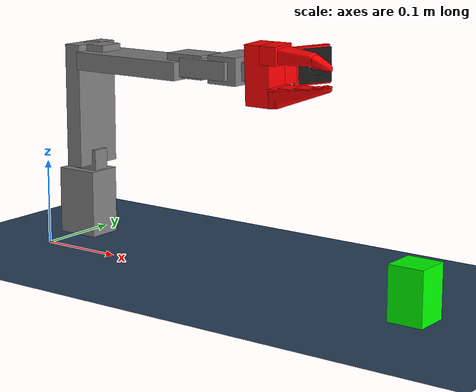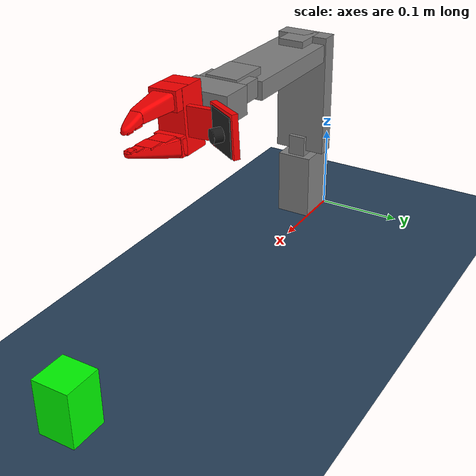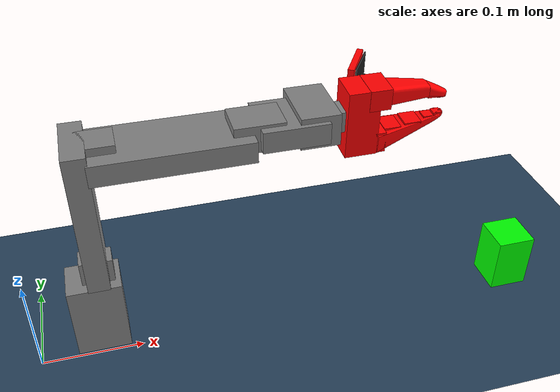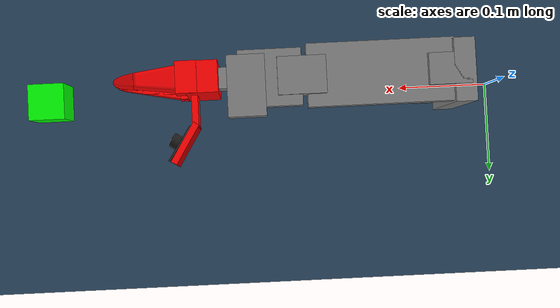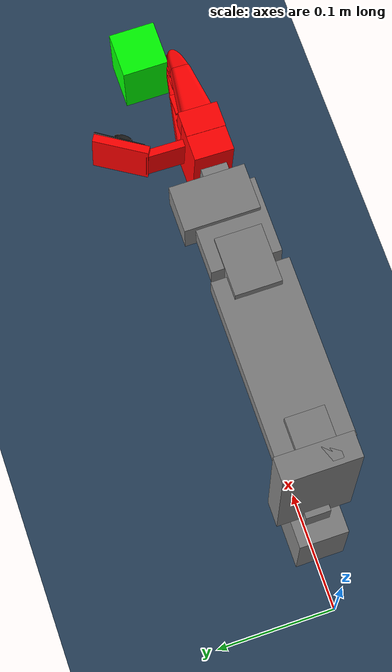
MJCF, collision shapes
<mujoco model="scene">
  <include file="so101.xml"/>

  <visual>
    <headlight diffuse="0.6 0.6 0.6" ambient="0.3 0.3 0.3" specular="0 0 0"/>
    <rgba haze="0.15 0.25 0.35 1"/>
    <global azimuth="160" elevation="-20"/>
  </visual>

  <asset>
    <texture type="skybox" builtin="gradient" rgb1="0.3 0.5 0.7" rgb2="0 0 0" width="512" height="3072"/>
    <texture type="2d" name="groundplane" builtin="checker" mark="edge" rgb1="0.2 0.3 0.4" rgb2="0.1 0.2 0.3"
      markrgb="0.8 0.8 0.8" width="300" height="300"/>
    <material name="groundplane" texture="groundplane" texuniform="true" texrepeat="5 5" reflectance="0.2"/>
  </asset>

  <worldbody>
    <light pos="0 0 3.5" dir="0 0 -1" directional="true"/>
    <geom name="floor" size="0 0 0.05" pos="0 0 0" type="plane" material="groundplane"/>
    <body name="box" pos="0.5 0 0.03">
      <freejoint/>
      <geom type="box" name="box" size="0.02 0.02 0.03" condim="3" friction="1 .03 .003" rgba="0 1 0 1" contype="2"
        conaffinity="1" solref="0.01 1"/>
    </body>
  </worldbody>

  <keyframe>
    <key name="pickup" time="59.522"
      qpos="9.27168e-09 0.000381818 0.473496 1.17717 1.58437 0.727663 0.219168 0.0242023 0.0199388 0.0643606 -0.704172 0.0643607 0.704172"
      qvel="-5.74489e-08 1.81938e-08 6.93455e-09 -7.64472e-09 1.57787e-09 8.00072e-14 2.50825e-08 1.39116e-07 9.22415e-09 1.91651e-08 -3.94011e-09 -1.49479e-06"
      ctrl="0 0 0.4732 1.17718 1.58438 0.727665"/>
  </keyframe>
</mujoco>

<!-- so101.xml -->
<mujoco model="so101">
  <option integrator="implicitfast" timestep="0.005" cone="elliptic" iterations="10" ls_iterations="20" impratio="10"/>

  <compiler angle="radian" meshdir="assets" autolimits="true"/>

  <visual>
    <scale contactwidth="0.1" contactheight="0.05" forcewidth="0.02" framelength="0.75" framewidth="0.025"
      camera="0.2"/>
  </visual>

  <default>
    <mesh maxhullvert="128"/>

    <default class="so101">
      <joint damping="1" frictionloss="0.1" armature="0.005"/>
      <position kp="50"/>
      <default class="visual">
        <geom type="mesh" contype="0" conaffinity="0" group="2"/>
      </default>
      <default class="collision">
        <geom group="3" condim="3"/>
      </default>
      <default class="collision_gripper">
        <geom group="3" condim="6" friction="1 5e-3 5e-4" solref="0.01 1" priority="1" rgba="1.0 0 0 1.0" mass="0"/>
      </default>
      <default class="collision_gripper_mesh">
        <geom group="4" condim="6" friction="1 5e-3 5e-4" solref="0.01 1" priority="1" rgba="1.0 0 0 1.0" mass="0"/>
      </default>
    </default>

    <default class="sts3215">
      <geom contype="0" conaffinity="0"/>
      <joint damping="0.60" frictionloss="0.052" armature="0.028"/>
      <position kp="998.22" kv="2.731" forcerange="-2.94 2.94"/>
    </default>

    <default class="backlash">
      <!-- +/- 0.5° of backlash – not added to any joints for now -->
      <joint damping="0.01" frictionloss="0" armature="0.01" limited="true" range="-0.0087267 0.0087267"/>
    </default>
  </default>

  <asset>
    <mesh file="waveshare_mounting_plate_so101_v2.stl"/>
    <mesh file="sts3215_03a_v1.stl"/>
    <mesh file="motor_holder_so101_base_v1.stl"/>
    <mesh file="wrist_roll_follower_so101_v1.stl"/>
    <mesh file="moving_jaw_so101_v1.stl"/>
    <mesh file="base_motor_holder_so101_v1.stl"/>
    <mesh file="upper_arm_so101_v1.stl"/>
    <mesh file="wrist_roll_pitch_so101_v2.stl"/>
    <mesh file="under_arm_so101_v1.stl"/>
    <mesh file="rotation_pitch_so101_v1.stl"/>
    <mesh file="motor_holder_so101_wrist_v1.stl"/>
    <mesh file="sts3215_03a_no_horn_v1.stl"/>
    <mesh file="base_so101_v2.stl"/>
    <mesh file="moving_jaw_so101_gripper_v1.stl"/>
    <mesh file="wrist_roll_follower_so101_camera_mount.stl"/>
    <!-- Gripper collision meshes. -->
    <mesh maxhullvert="64" file="wrist_roll_follower_so101_gripper_part0_v1.stl"/>
    <mesh maxhullvert="64" file="moving_jaw_so101_gripper_part0_v1.stl"/>
    <mesh maxhullvert="64" file="moving_jaw_so101_gripper_part1_v1.stl"/>
    <material name="base_motor_holder_so101_v1_material" rgba="1 0.82 0.12 1"/>
    <material name="base_so101_v2_material" rgba="1 0.82 0.12 1"/>
    <material name="sts3215_03a_v1_material" rgba="0.1 0.1 0.1 1"/>
    <material name="waveshare_mounting_plate_so101_v2_material" rgba="1 0.82 0.12 1"/>
    <material name="motor_holder_so101_base_v1_material" rgba="1 0.82 0.12 1"/>
    <material name="rotation_pitch_so101_v1_material" rgba="1 0.82 0.12 1"/>
    <material name="upper_arm_so101_v1_material" rgba="1 0.82 0.12 1"/>
    <material name="under_arm_so101_v1_material" rgba="1 0.82 0.12 1"/>
    <material name="motor_holder_so101_wrist_v1_material" rgba="1 0.82 0.12 1"/>
    <material name="sts3215_03a_no_horn_v1_material" rgba="0.1 0.1 0.1 1.0"/>
    <material name="wrist_roll_pitch_so101_v2_material" rgba="1 0.82 0.12 1"/>
    <material name="wrist_roll_follower_so101_v1_material" rgba="1 0.82 0.12 1"/>
    <material name="moving_jaw_so101_v1_material" rgba="1 0.82 0.12 1"/>
  </asset>

  <worldbody>
    <!-- Link base -->
    <body name="base" pos="0 0 0" quat="1 0 0 0" childclass="so101">
      <inertial pos="0.0137179 -5.19711e-05 0.0334843" mass="0.147"
        fullinertia="0.000114686 0.000136117 0.000130364 -4.59787e-07 4.97151e-06 9.75275e-08"/>
      <!-- Part base_motor_holder_so101_v1 -->
      <geom type="mesh" class="visual" pos="-0.006365 -9.9e-05 -0.0024" quat="1 1 1 1" mesh="base_motor_holder_so101_v1"
        material="base_motor_holder_so101_v1_material"/>
      <!-- Part base_so101_v2 -->
      <geom type="mesh" class="visual" pos="-0.006365 0 -0.0024" quat="1 1 1 1" mesh="base_so101_v2"
        material="base_so101_v2_material"/>
      <!-- Part sts3215_03a_v1 -->
      <geom type="mesh" class="visual" pos="0.0263353 0 0.0437" quat="1 0 0 0" mesh="sts3215_03a_v1"
        material="sts3215_03a_v1_material"/>
      <!-- Part waveshare_mounting_plate_so101_v2 -->
      <geom type="mesh" class="visual" pos="-0.0309827 -0.000199 0.0474" quat="1 1 1 1"
        mesh="waveshare_mounting_plate_so101_v2" material="waveshare_mounting_plate_so101_v2_material"/>
      <!-- Frame baseframe -->
      <site group="3" name="baseframe" pos="0 0 0" quat="1 0 0 0"/>
      <!-- Link shoulder -->
      <body name="shoulder" pos="0.0388353 0 0.0624" quat="0 0 -1 0">
        <!-- Joint from base to shoulder -->
        <joint axis="0 0 1" name="shoulder_pan" type="hinge" range="-1.91986 1.91986" class="sts3215"/>
        <inertial pos="-0.0307604 -1.7e-05 -0.0252713" mass="0.100006"
          fullinertia="8.3759e-05 8.10403e-05 2.39783e-05 7.55525e-08 -1.16342e-06 1.54663e-07"/>
        <!-- Part sts3215_03a_v1_2 -->
        <geom type="mesh" class="visual" pos="-0.030399 0.000422 -0.0417" quat="1 1 1 -1" mesh="sts3215_03a_v1"
          material="sts3215_03a_v1_material"/>
        <geom type="box" class="collision" pos="-0.030399 0.000422 -0.0387" quat="1 1 1 -1" size="0.023 0.015 0.01"/>
        <!-- Part motor_holder_so101_base_v1 -->
        <geom type="mesh" class="visual" pos="-0.067599 -0.0001778 0.01585" quat="1 1 -1 1"
          mesh="motor_holder_so101_base_v1" material="motor_holder_so101_base_v1_material"/>
        <geom type="box" class="collision" pos="-0.025 0 0.0" quat="1 1 -1 1" size="0.038 0.025 0.02"/>
        <!-- Part rotation_pitch_so101_v1 -->
        <geom type="mesh" class="visual" pos="0.012201 2.2e-05 0.0464" quat="1 -1 0 0" mesh="rotation_pitch_so101_v1"
          material="rotation_pitch_so101_v1_material"/>
        <!-- Link upper_arm -->
        <body name="upper_arm" pos="-0.0303992 -0.0182778 -0.0542" quat="1 -1 -1 -1">
          <!-- Joint from shoulder to upper_arm -->
          <joint axis="0 0 1" name="shoulder_lift" type="hinge" range="-1.7453293 1.7453293" class="sts3215"/>
          <inertial pos="-0.089847 -0.008382 0.018409" mass="0.103"
            fullinertia="4.08002e-05 0.000147318 0.000142487 -1.97819e-05 -4.03016e-08 8.97326e-09"/>
          <!-- Part sts3215_03a_v1_3 -->
          <geom type="mesh" class="visual" pos="-0.11257 -0.0155 0.0187" quat="0 -1 1 0" mesh="sts3215_03a_v1"
            material="sts3215_03a_v1_material"/>
          <geom type="box" class="collision" pos="-0.06 0 0.02" quat="0 -1 1 0" size="0.01 0.07 0.03"/>
          <!-- Part upper_arm_so101_v1 -->
          <geom type="mesh" class="visual" pos="-0.065085 0.012 0.0182" quat="0 1 0 0" mesh="upper_arm_so101_v1"
            material="upper_arm_so101_v1_material"/>
          <geom type="box" class="collision" pos="-0.12 -0.014 0.0182" quat="0 1 0 0" size="0.01 0.02 0.015"/>
          <!-- Link lower_arm -->
          <body name="lower_arm" pos="-0.11257 -0.028 0" quat="1 0 0 1">
            <!-- Joint from upper_arm to lower_arm -->
            <!-- Note: 5-degree calibration offset applied to joint range -->
            <joint axis="0 0 1" name="elbow_flex" type="hinge" range="-1.69 1.69" class="sts3215"/>
            <inertial pos="-0.098070 0.0032438 0.018283" mass="0.104"
              fullinertia="2.87438e-05 0.000159844 0.00014529 7.41152e-06 1.26409e-06 -4.90188e-08"/>
            <!-- Part under_arm_so101_v1 -->
            <geom type="mesh" class="visual" pos="-0.06485 -0.032 0.0182" quat="0 1 0 0" mesh="under_arm_so101_v1"
              material="under_arm_so101_v1_material"/>
            <geom type="box" class="collision" pos="-0.05 0 0.0182" quat="0 1 0 0" size="0.07 0.01 0.03"/>
            <!-- Part motor_holder_so101_wrist_v1 -->
            <geom type="mesh" class="visual" pos="-0.06485 -0.032 0.018" quat="0 -1 0 0"
              mesh="motor_holder_so101_wrist_v1" material="motor_holder_so101_wrist_v1_material"/>
            <geom type="box" class="collision" pos="-0.125 0.005 0.018" quat="0 -1 0 0" size="0.023 0.013 0.018"/>
            <!-- Part sts3215_03a_v1_4 -->
            <geom type="mesh" class="visual" pos="-0.1224 0.0052 0.0187" quat="0 0 1 0" mesh="sts3215_03a_v1"
              material="sts3215_03a_v1_material"/>
            <!-- Link wrist -->
            <body name="wrist" pos="-0.1349 0.0052 0" quat="1 0 0 -1">
              <!-- Joint from lower_arm to wrist -->
              <joint axis="0 0 1" name="wrist_flex" type="hinge" range="-1.658063 1.658063" class="sts3215"/>
              <inertial pos="-0.000103312 -0.0386143 0.0281156" mass="0.079"
                fullinertia="3.68263e-05 2.5391e-05 2.1e-05 1.7893e-08 -5.28128e-08 3.6412e-06"/>
              <!-- Part sts3215_03a_no_horn_v1 -->
              <geom type="mesh" class="visual" pos="0 -0.0424 0.0306" quat="1 1 1 -1" mesh="sts3215_03a_no_horn_v1"
                material="sts3215_03a_no_horn_v1_material"/>
              <geom type="box" class="collision" pos="0 -0.0424 0.0256" quat="1 1 1 -1" size="0.029 0.015 0.018"/>
              <!-- Part wrist_roll_pitch_so101_v2 -->
              <geom type="mesh" class="visual" pos="0 -0.028 0.0181" quat="1 -1 -1 -1" mesh="wrist_roll_pitch_so101_v2"
                material="wrist_roll_pitch_so101_v2_material"/>
              <geom type="box" class="collision" pos="0 -0.02 0.0191" quat="1 -1 -1 -1" size="0.027 0.01 0.03"/>
              <!-- Link gripper -->
              <body name="gripper" pos="5.55112e-17 -0.0611 0.0181" quat="0.0172091 -0.0172091 0.706897 0.706897">
                <!-- Joint from wrist to gripper -->
                <joint axis="0 0 1" name="wrist_roll" type="hinge" range="-2.7438473 2.8412063" class="sts3215"/>
                <inertial pos="0.000214 0.000245 -0.025187" mass="0.087"
                  fullinertia="2.75087e-05 4.33657e-05 3.45059e-05 -3.35241e-07 -5.7352e-06 -5.17847e-08"/>
                <!-- Part sts3215_03a_v1_5 -->
                <geom type="mesh" class="visual" pos="0.0077 0.0001 -0.0234" quat="1 -1 0 0" mesh="sts3215_03a_v1"
                  material="sts3215_03a_v1_material"/>
                <!-- Part wrist_roll_follower_so101_v1 (fixed jaw) -->
                <geom type="mesh" class="visual" pos="0 -0.000218 0.00095" quat="0 1 0 0"
                  mesh="wrist_roll_follower_so101_v1" material="wrist_roll_follower_so101_v1_material"/>
                <geom type="box" class="collision" pos="0 -0.000218 0.00095" quat="0 1 0 0" size="0.01 0.01 0.018"/>
                <!-- Part wrist_roll_follower_so101_v1 gripper collision  -->
                <geom name="fixed_jaw_box1" class="collision_gripper" type="box" size="0.0325 0.015 0.015"
                  pos="-0.0025 0 -0.022"/>
                <geom name="fixed_jaw_box2" class="collision_gripper" type="box" size="0.01 0.015 0.005"
                  pos="-0.024 0 -0.04"/>
                <geom name="fixed_jaw_sph_tip1" class="collision_gripper" type="sphere" size="0.00075"
                  pos="-0.0081 0 -0.101"/>
                <geom name="fixed_jaw_sph_tip2" class="collision_gripper" type="sphere" size="0.00075"
                  pos="-0.0081 0.0035 -0.0975"/>
                <geom name="fixed_jaw_sph_tip3" class="collision_gripper" type="sphere" size="0.00075"
                  pos="-0.0081 -0.0035 -0.0975"/>
                <geom type="mesh" class="collision_gripper_mesh" pos="0 -0.000218 0.00095" quat="0 1 0 0"
                  mesh="wrist_roll_follower_so101_gripper_part0_v1"/>
                <geom name="fixed_jaw_box3" class="collision_gripper" type="capsule" size="0.0011 0.002"
                  pos="-0.009 0 -0.103" euler="1.57 0 0"/>
                <geom name="fixed_jaw_box4" class="collision_gripper" type="box" size="0.001 0.004 0.004"
                  pos="-0.009 0 -0.0982"/>
                <geom name="fixed_jaw_box5" class="collision_gripper" type="box" size="0.001 0.005 0.006"
                  pos="-0.0108 0 -0.0905"/>
                <geom name="fixed_jaw_box6" class="collision_gripper" type="box" size="0.001 0.009 0.008"
                  pos="-0.0125 0 -0.0727"/>
                <geom name="fixed_jaw_box7" class="collision_gripper" type="box" size="0.001 0.01 0.008"
                  pos="-0.0143 0 -0.053"/>
                <!-- Frame gripperframe -->
                <site group="3" name="gripperframe" pos="0.012 -0.000218 -0.098127" quat="1 0 1 0"/>
                <!-- Camera mount -->
                <body name="camera_mount">
                  <camera name="wrist_cam" mode="fixed" pos="-0.00296 0.05436 -0.05310"
                    quat="0.958280 -0.285792 -0.001556 0.004547" fovy="61"/>
                  <geom type="mesh" mass="0.012" class="visual" pos="0 -0.000218 0.00095" quat="0 1 0 0"
                    mesh="wrist_roll_follower_so101_camera_mount" material="wrist_roll_follower_so101_v1_material"/>
                  <geom name="wrist_camera_pcb" type="box" size="0.019 0.019 0.0005" pos="-0.00101 0.05958 -0.04515"
                    quat="0.958280 -0.285792 -0.001556 0.004547" group="2" material="sts3215_03a_v1_material"
                    contype="0" conaffinity="0"/>
                  <geom name="wrist_camera_lens" type="cylinder" size="0.007 0.00475" mass="0"
                    pos="-0.00298 0.05669 -0.04954" quat="0.958280 -0.285792 -0.001556 0.004547" group="1"
                    material="sts3215_03a_v1_material" contype="0" conaffinity="0"/>
                  <geom name="camera_box1" class="collision_gripper" type="box" size="0.015 0.015 0.003"
                    pos="-0.0025 0.03 -0.03"/>
                  <geom name="camera_box2" class="collision_gripper" type="box" size="0.021 0.021 0.003"
                    pos="-0.001 0.06 -0.04" euler="-0.55 0 0"/>
                </body>
                <!-- Link moving_jaw_so101_v1 -->
                <body name="moving_jaw_so101_v1" pos="0.0202 0.0188 -0.0234" quat="1 1 0 0">
                  <!-- Joint from gripper to moving_jaw_so101_v1 -->
                  <joint axis="0 0 1" name="gripper" type="hinge" range="-0.174533 1.7453292" class="sts3215"/>
                  <inertial pos="-0.001575 -0.0300244 0.0192755" mass="0.012"
                    fullinertia="6.61427e-06 1.89032e-06 5.28738e-06 -3.19807e-07 -5.90717e-09 -1.09945e-07"/>
                  <!-- Part moving_jaw_so101_v1 -->
                  <geom type="mesh" class="visual" pos="0 0 0.0189" quat="1 0 0 0" mesh="moving_jaw_so101_v1"
                    material="moving_jaw_so101_v1_material"/>
                  <!-- Part moving_jaw_so101_v1 gripper collisions -->
                  <geom type="mesh" class="collision_gripper_mesh" pos="0 0 0.0189" quat="1 0 0 0"
                    mesh="moving_jaw_so101_gripper_part0_v1"/>
                  <geom type="mesh" class="collision_gripper_mesh" pos="0 0 0.0189" quat="1 0 0 0"
                    mesh="moving_jaw_so101_gripper_part1_v1"/>
                  <geom name="moving_jaw_box1" class="collision_gripper" type="box" size="0.01 0.01 0.015"
                    pos="-0.0 -0.013 0.019"/>
                  <geom name="moving_jaw_sph_tip1" class="collision_gripper" type="sphere" size="0.00075"
                    pos="-0.012 -0.078 0.0192"/>
                  <geom name="moving_jaw_sph_tip2" class="collision_gripper" type="sphere" size="0.00075"
                    pos="-0.012 -0.0745 0.0225"/>
                  <geom name="moving_jaw_sph_tip3" class="collision_gripper" type="sphere" size="0.00075"
                    pos="-0.012 -0.0745 0.0155"/>
                  <geom name="moving_jaw_box2" class="collision_gripper" type="box" size="0.001 0.004 0.004"
                    pos="-0.0113 -0.076 0.01875"/>
                  <geom name="moving_jaw_box3" class="collision_gripper" type="box" size="0.001 0.005 0.006"
                    pos="-0.0093 -0.067 0.01875"/>
                </body>
              </body>
            </body>
          </body>
        </body>
      </body>
    </body>
  </worldbody>

  <actuator>
    <position class="sts3215" name="shoulder_pan" joint="shoulder_pan" ctrlrange="-1.91986 1.91986"/>
    <position class="sts3215" name="shoulder_lift" joint="shoulder_lift" ctrlrange="-1.74533 1.74533"/>
    <position class="sts3215" name="elbow_flex" joint="elbow_flex" ctrlrange="-1.69 1.69"/>
    <position class="sts3215" name="wrist_flex" joint="wrist_flex" ctrlrange="-1.65806 1.65806"/>
    <position class="sts3215" name="wrist_roll" joint="wrist_roll" ctrlrange="-2.74385 2.84121"/>
    <position class="sts3215" name="gripper" joint="gripper" ctrlrange="-0.17453 1.74533"/>
  </actuator>
</mujoco>
